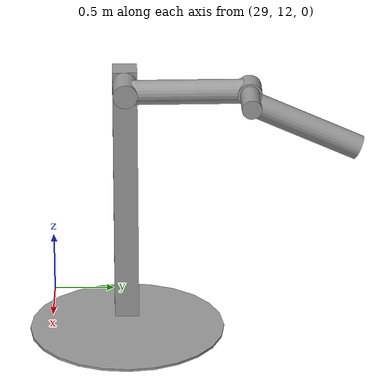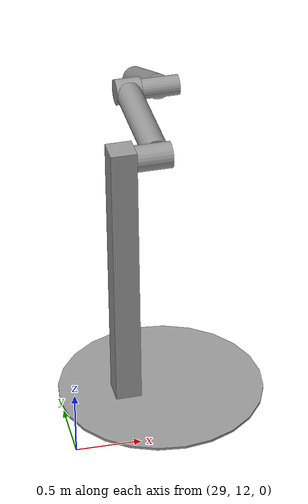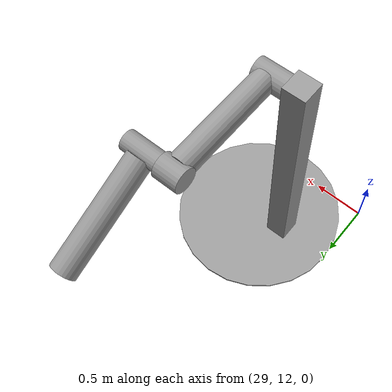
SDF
<sdf version="1.7">
 <world name="factory_ground">
  <model name="double_pendulum_with_base_clone_0">
   <link name="base">
    <inertial>
     <mass>100</mass>
     <inertia><ixx>1</ixx><ixy>0</ixy><ixz>0</ixz><iyy>1</iyy><iyz>0</iyz><izz>1</izz></inertia>
    </inertial>
    <visual name="vis_plate_on_ground">
     <pose>0 0 0.01 0 -0 0</pose>
     <geometry><cylinder><radius>0.8</radius><length>0.02</length></cylinder></geometry>
     <material>
      <script><uri>file://media/materials/scripts/gazebo.material</uri><name>Gazebo/Grey</name></script>
     </material>
    </visual>
    <visual name="vis_pole">
     <pose>-0.275 0 1.1 0 -0 0</pose>
     <geometry><box><size>0.2 0.2 2.2</size></box></geometry>
     <material>
      <script><uri>file://media/materials/scripts/gazebo.material</uri><name>Gazebo/Grey</name></script>
     </material>
    </visual>
    <collision name="col_plate_on_ground">
     <pose>0 0 0.01 0 -0 0</pose>
     <geometry><cylinder><radius>0.8</radius><length>0.02</length></cylinder></geometry>
    </collision>
    <collision name="col_pole">
     <pose>-0.275 0 1.1 0 -0 0</pose>
     <geometry><box><size>0.2 0.2 2.2</size></box></geometry>
    </collision>
   </link>
   <link name="upper_link">
    <pose>0 0 2.1 -1.5708 0 0</pose>
    <inertial>
     <pose>0 0 0.5 0 -0 0</pose>
     <inertia><ixx>1</ixx><ixy>0</ixy><ixz>0</ixz><iyy>1</iyy><iyz>0</iyz><izz>1</izz></inertia>
     <mass>1</mass>
    </inertial>
    <visual name="vis_upper_joint">
     <pose>-0.05 0 0 3.14159 1.57079 3.14159</pose>
     <geometry><cylinder><radius>0.1</radius><length>0.3</length></cylinder></geometry>
     <material>
      <script><uri>file://media/materials/scripts/gazebo.material</uri><name>Gazebo/Grey</name></script>
     </material>
    </visual>
    <visual name="vis_lower_joint">
     <pose>0 0 1 3.14159 1.57079 3.14159</pose>
     <geometry><cylinder><radius>0.1</radius><length>0.2</length></cylinder></geometry>
     <material>
      <script><uri>file://media/materials/scripts/gazebo.material</uri><name>Gazebo/Grey</name></script>
     </material>
    </visual>
    <visual name="vis_cylinder">
     <pose>0 0 0.5 0 -0 0</pose>
     <geometry><cylinder><radius>0.1</radius><length>0.9</length></cylinder></geometry>
     <material>
      <script><uri>file://media/materials/scripts/gazebo.material</uri><name>Gazebo/Grey</name></script>
     </material>
    </visual>
    <collision name="col_upper_joint">
     <pose>-0.05 0 0 3.14159 1.57079 3.14159</pose>
     <geometry><cylinder><radius>0.1</radius><length>0.3</length></cylinder></geometry>
    </collision>
    <collision name="col_lower_joint">
     <pose>0 0 1 3.14159 1.57079 3.14159</pose>
     <geometry><cylinder><radius>0.1</radius><length>0.2</length></cylinder></geometry>
    </collision>
    <collision name="col_cylinder">
     <pose>0 0 0.5 0 -0 0</pose>
     <geometry><cylinder><radius>0.1</radius><length>0.9</length></cylinder></geometry>
    </collision>
   </link>
   <link name="lower_link">
    <pose>0.25 1 2.1 -2 0 0</pose>
    <inertial>
     <pose>0 0 0.5 0 -0 0</pose>
     <inertia><ixx>1</ixx><ixy>0</ixy><ixz>0</ixz><iyy>1</iyy><iyz>0</iyz><izz>1</izz></inertia>
     <mass>1</mass>
    </inertial>
    <visual name="vis_lower_joint">
     <pose>0 0 0 3.14159 1.57079 3.14159</pose>
     <geometry><cylinder><radius>0.08</radius><length>0.3</length></cylinder></geometry>
     <material>
      <script><uri>file://media/materials/scripts/gazebo.material</uri><name>Gazebo/Grey</name></script>
     </material>
    </visual>
    <visual name="vis_cylinder">
     <pose>0 0 0.5 0 -0 0</pose>
     <geometry><cylinder><radius>0.1</radius><length>0.9</length></cylinder></geometry>
     <material>
      <script><uri>file://media/materials/scripts/gazebo.material</uri><name>Gazebo/Grey</name></script>
     </material>
    </visual>
    <collision name="col_lower_joint">
     <pose>0 0 0 3.14159 1.57079 3.14159</pose>
     <geometry><cylinder><radius>0.08</radius><length>0.3</length></cylinder></geometry>
    </collision>
    <collision name="col_cylinder">
     <pose>0 0 0.5 0 -0 0</pose>
     <geometry><cylinder><radius>0.1</radius><length>0.9</length></cylinder></geometry>
    </collision>
   </link>
   <joint name="upper_joint" type="revolute">
    <parent>base</parent>
    <child>upper_link</child>
    <axis>
     <xyz>1 0 0</xyz>
     <limit><lower>-1e+16</lower><upper>1e+16</upper></limit>
     <dynamics><spring_reference>0</spring_reference><spring_stiffness>0</spring_stiffness></dynamics>
    </axis>
   </joint>
   <joint name="lower_joint" type="revolute">
    <parent>upper_link</parent>
    <child>lower_link</child>
    <axis>
     <xyz>1 0 0</xyz>
     <limit><lower>-1e+16</lower><upper>1e+16</upper></limit>
     <dynamics><spring_reference>0</spring_reference><spring_stiffness>0</spring_stiffness></dynamics>
    </axis>
   </joint>
   <pose>29.7878 12.6189 0.017096 0.000331 -0.01002 0.018551</pose>
  </model>
 </world>
</sdf>
